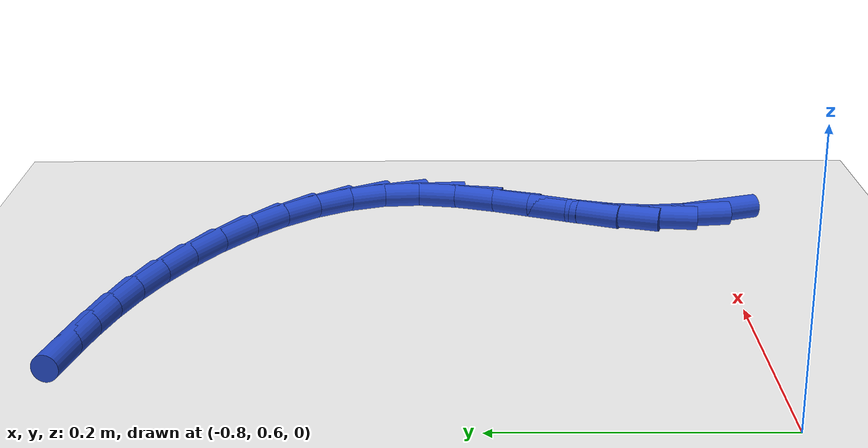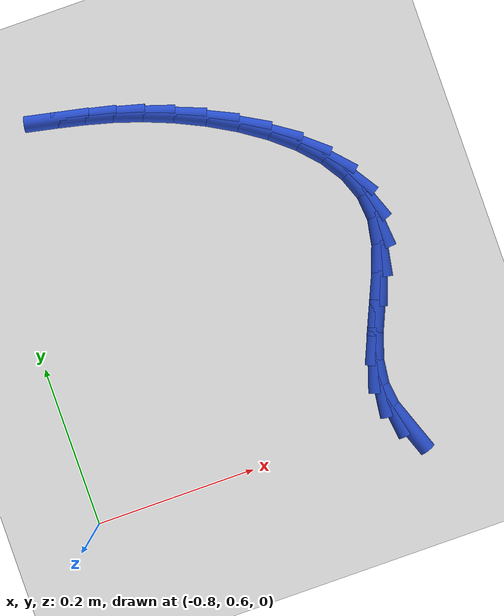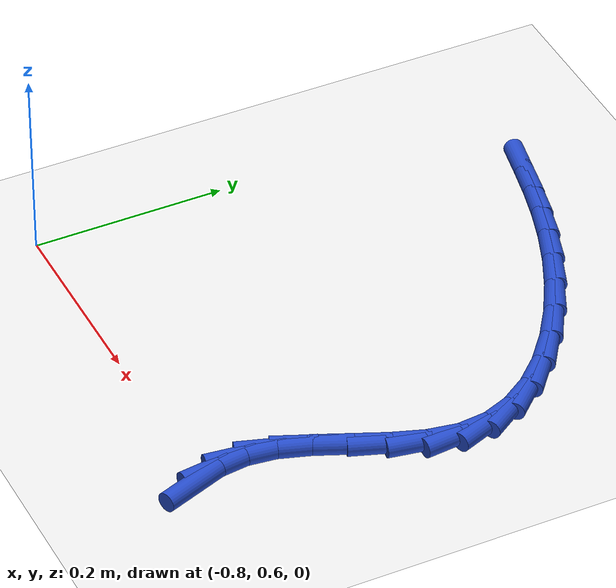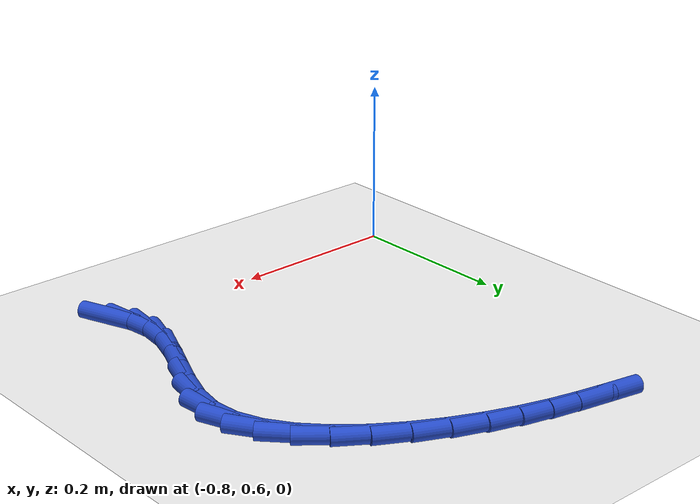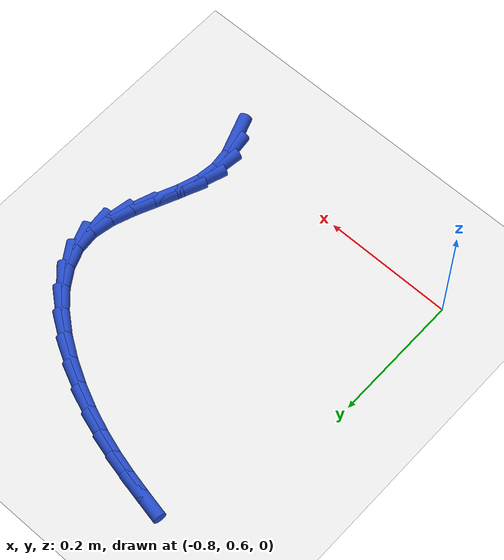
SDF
<sdf version="1.6">
 <world name="default">
  <model name="ground_plane">
   <static>1</static>
   <link name="link">
    <collision name="collision">
     <geometry><plane><normal>0 0 1</normal><size>100 100</size></plane></geometry>
     <surface><friction><ode><mu>100</mu><mu2>50</mu2></ode></friction></surface>
    </collision>
    <visual name="visual">
     <cast_shadows>0</cast_shadows>
     <geometry><plane><normal>0 0 1</normal><size>100 100</size></plane></geometry>
     <material>
      <script><uri>file://media/materials/scripts/gazebo.material</uri><name>Gazebo/WhiteGlow</name></script>
     </material>
    </visual>
   </link>
  </model>
  <model name="line">
   <link name="link_21">
    <pose>-0.40477902608490995 0.5917433827891726 0.01 0 1.57 -1.2191458471171945</pose>
    <collision name="collision">
     <geometry><cylinder><radius>0.01</radius><length>0.08</length></cylinder></geometry>
    </collision>
    <visual name="visual">
     <material>
      <script><name>Gazebo/Blue</name><uri>file://media/materials/scripts/gazebo.material</uri></script>
     </material>
     <geometry><cylinder><radius>0.01</radius><length>0.08</length></cylinder></geometry>
    </visual>
   </link>
   <link name="link_22">
    <pose>-0.4147504416400459 0.6189208560067856 0.01 0 1.57 -1.4473000427369278</pose>
    <collision name="collision">
     <geometry><cylinder><radius>0.01</radius><length>0.08</length></cylinder></geometry>
    </collision>
    <visual name="visual">
     <material>
      <script><name>Gazebo/Blue</name><uri>file://media/materials/scripts/gazebo.material</uri></script>
     </material>
     <geometry><cylinder><radius>0.01</radius><length>0.08</length></cylinder></geometry>
    </visual>
   </link>
   <link name="link_23">
    <pose>-0.4183021813384908 0.6475343894901304 0.01 0 1.57 1.4511622171094867</pose>
    <collision name="collision">
     <geometry><cylinder><radius>0.01</radius><length>0.08</length></cylinder></geometry>
    </collision>
    <visual name="visual">
     <material>
      <script><name>Gazebo/Blue</name><uri>file://media/materials/scripts/gazebo.material</uri></script>
     </material>
     <geometry><cylinder><radius>0.01</radius><length>0.08</length></cylinder></geometry>
    </visual>
   </link>
   <link name="link_24">
    <pose>-0.41466422733661273 0.677798179427977 0.01 0 1.57 1.256721463330166</pose>
    <collision name="collision">
     <geometry><cylinder><radius>0.01</radius><length>0.08</length></cylinder></geometry>
    </collision>
    <visual name="visual">
     <material>
      <script><name>Gazebo/Blue</name><uri>file://media/materials/scripts/gazebo.material</uri></script>
     </material>
     <geometry><cylinder><radius>0.01</radius><length>0.08</length></cylinder></geometry>
    </visual>
   </link>
   <link name="link_25">
    <pose>-0.404308313295251 0.7096795612259761 0.01 0 1.57 1.1665611658719603</pose>
    <collision name="collision">
     <geometry><cylinder><radius>0.01</radius><length>0.08</length></cylinder></geometry>
    </collision>
    <visual name="visual">
     <material>
      <script><name>Gazebo/Blue</name><uri>file://media/materials/scripts/gazebo.material</uri></script>
     </material>
     <geometry><cylinder><radius>0.01</radius><length>0.08</length></cylinder></geometry>
    </visual>
   </link>
   <link name="link_26">
    <pose>-0.3902040466158815 0.7426492918153176 0.01 0 1.57 1.1598717814632624</pose>
    <collision name="collision">
     <geometry><cylinder><radius>0.01</radius><length>0.08</length></cylinder></geometry>
    </collision>
    <visual name="visual">
     <material>
      <script><name>Gazebo/Blue</name><uri>file://media/materials/scripts/gazebo.material</uri></script>
     </material>
     <geometry><cylinder><radius>0.01</radius><length>0.08</length></cylinder></geometry>
    </visual>
   </link>
   <link name="link_27">
    <pose>-0.3756204334847614 0.7761186075079607 0.01 0 1.57 1.2311646708894919</pose>
    <collision name="collision">
     <geometry><cylinder><radius>0.01</radius><length>0.08</length></cylinder></geometry>
    </collision>
    <visual name="visual">
     <material>
      <script><name>Gazebo/Blue</name><uri>file://media/materials/scripts/gazebo.material</uri></script>
     </material>
     <geometry><cylinder><radius>0.01</radius><length>0.08</length></cylinder></geometry>
    </visual>
   </link>
   <link name="link_28">
    <pose>-0.36382648008814805 0.8094987446158667 0.01 0 1.57 1.3971826716482925</pose>
    <collision name="collision">
     <geometry><cylinder><radius>0.01</radius><length>0.08</length></cylinder></geometry>
    </collision>
    <visual name="visual">
     <material>
      <script><name>Gazebo/Blue</name><uri>file://media/materials/scripts/gazebo.material</uri></script>
     </material>
     <geometry><cylinder><radius>0.01</radius><length>0.08</length></cylinder></geometry>
    </visual>
   </link>
   <link name="link_29">
    <pose>-0.35809119261229855 0.8422009394509945 0.01 0 1.57 -1.4765542553431965</pose>
    <collision name="collision">
     <geometry><cylinder><radius>0.01</radius><length>0.08</length></cylinder></geometry>
    </collision>
    <visual name="visual">
     <material>
      <script><name>Gazebo/Blue</name><uri>file://media/materials/scripts/gazebo.material</uri></script>
     </material>
     <geometry><cylinder><radius>0.01</radius><length>0.08</length></cylinder></geometry>
    </visual>
   </link>
   <link name="link_30">
    <pose>-0.36106757982778737 0.8736897457355649 0.01 0 1.57 -1.2087274826623706</pose>
    <collision name="collision">
     <geometry><cylinder><radius>0.01</radius><length>0.08</length></cylinder></geometry>
    </collision>
    <visual name="visual">
     <material>
      <script><name>Gazebo/Blue</name><uri>file://media/materials/scripts/gazebo.material</uri></script>
     </material>
     <geometry><cylinder><radius>0.01</radius><length>0.08</length></cylinder></geometry>
    </visual>
   </link>
   <link name="link_31">
    <pose>-0.37242974952171337 0.9036875547765354 0.01 0 1.57 -0.9913672337671484</pose>
    <collision name="collision">
     <geometry><cylinder><radius>0.01</radius><length>0.08</length></cylinder></geometry>
    </collision>
    <visual name="visual">
     <material>
      <script><name>Gazebo/Blue</name><uri>file://media/materials/scripts/gazebo.material</uri></script>
     </material>
     <geometry><cylinder><radius>0.01</radius><length>0.08</length></cylinder></geometry>
    </visual>
   </link>
   <link name="link_32">
    <pose>-0.39095253943699854 0.9319945938403321 0.01 0 1.57 -0.8238748802612862</pose>
    <collision name="collision">
     <geometry><cylinder><radius>0.01</radius><length>0.08</length></cylinder></geometry>
    </collision>
    <visual name="visual">
     <material>
      <script><name>Gazebo/Blue</name><uri>file://media/materials/scripts/gazebo.material</uri></script>
     </material>
     <geometry><cylinder><radius>0.01</radius><length>0.08</length></cylinder></geometry>
    </visual>
   </link>
   <link name="link_33">
    <pose>-0.41541059901301086 0.9584111064919211 0.01 0 1.57 -0.6951343314391202</pose>
    <collision name="collision">
     <geometry><cylinder><radius>0.01</radius><length>0.08</length></cylinder></geometry>
    </collision>
    <visual name="visual">
     <material>
      <script><name>Gazebo/Blue</name><uri>file://media/materials/scripts/gazebo.material</uri></script>
     </material>
     <geometry><cylinder><radius>0.01</radius><length>0.08</length></cylinder></geometry>
    </visual>
   </link>
   <link name="link_34">
    <pose>-0.4445785776891182 0.9827373362962682 0.01 0 1.57 -0.593659636820305</pose>
    <collision name="collision">
     <geometry><cylinder><radius>0.01</radius><length>0.08</length></cylinder></geometry>
    </collision>
    <visual name="visual">
     <material>
      <script><name>Gazebo/Blue</name><uri>file://media/materials/scripts/gazebo.material</uri></script>
     </material>
     <geometry><cylinder><radius>0.01</radius><length>0.08</length></cylinder></geometry>
    </visual>
   </link>
   <link name="link_35">
    <pose>-0.4772311249046881 1.0047735268183393 0.01 0 1.57 -0.510396871629072</pose>
    <collision name="collision">
     <geometry><cylinder><radius>0.01</radius><length>0.08</length></cylinder></geometry>
    </collision>
    <visual name="visual">
     <material>
      <script><name>Gazebo/Blue</name><uri>file://media/materials/scripts/gazebo.material</uri></script>
     </material>
     <geometry><cylinder><radius>0.01</radius><length>0.08</length></cylinder></geometry>
    </visual>
   </link>
   <link name="link_36">
    <pose>-0.5121428900990886 1.0243199216231007 0.01 0 1.57 -0.4385036709214673</pose>
    <collision name="collision">
     <geometry><cylinder><radius>0.01</radius><length>0.08</length></cylinder></geometry>
    </collision>
    <visual name="visual">
     <material>
      <script><name>Gazebo/Blue</name><uri>file://media/materials/scripts/gazebo.material</uri></script>
     </material>
     <geometry><cylinder><radius>0.01</radius><length>0.08</length></cylinder></geometry>
    </visual>
   </link>
   <link name="link_37">
    <pose>-0.5480885227116872 1.0411767642755172 0.01 0 1.57 -0.37242439723758225</pose>
    <collision name="collision">
     <geometry><cylinder><radius>0.01</radius><length>0.08</length></cylinder></geometry>
    </collision>
    <visual name="visual">
     <material>
      <script><name>Gazebo/Blue</name><uri>file://media/materials/scripts/gazebo.material</uri></script>
     </material>
     <geometry><cylinder><radius>0.01</radius><length>0.08</length></cylinder></geometry>
    </visual>
   </link>
   <link name="link_38">
    <pose>-0.5838426721818522 1.0551442983405557 0.01 0 1.57 -0.30881945779054787</pose>
    <collision name="collision">
     <geometry><cylinder><radius>0.01</radius><length>0.08</length></cylinder></geometry>
    </collision>
    <visual name="visual">
     <material>
      <script><name>Gazebo/Blue</name><uri>file://media/materials/scripts/gazebo.material</uri></script>
     </material>
     <geometry><cylinder><radius>0.01</radius><length>0.08</length></cylinder></geometry>
    </visual>
   </link>
   <link name="link_39">
    <pose>-0.6184028130059088 1.0661698928595957 0.01 0 1.57 -0.25520044645844464</pose>
    <collision name="collision">
     <geometry><cylinder><radius>0.01</radius><length>0.08</length></cylinder></geometry>
    </collision>
    <visual name="visual">
     <material>
      <script><name>Gazebo/Blue</name><uri>file://media/materials/scripts/gazebo.material</uri></script>
     </material>
     <geometry><cylinder><radius>0.01</radius><length>0.08</length></cylinder></geometry>
    </visual>
   </link>
   <link name="link_40">
    <pose>-0.6517987080443894 1.0748825095075163 0.01 0 1.57 -0.21838367436833178</pose>
    <collision name="collision">
     <geometry><cylinder><radius>0.01</radius><length>0.08</length></cylinder></geometry>
    </collision>
    <visual name="visual">
     <material>
      <script><name>Gazebo/Blue</name><uri>file://media/materials/scripts/gazebo.material</uri></script>
     </material>
     <geometry><cylinder><radius>0.01</radius><length>0.08</length></cylinder></geometry>
    </visual>
   </link>
   <link name="link_41">
    <pose>-0.6843588424780241 1.0821083483859455 0.01 0 1.57 -0.20203209034415978</pose>
    <collision name="collision">
     <geometry><cylinder><radius>0.01</radius><length>0.08</length></cylinder></geometry>
    </collision>
    <visual name="visual">
     <material>
      <script><name>Gazebo/Blue</name><uri>file://media/materials/scripts/gazebo.material</uri></script>
     </material>
     <geometry><cylinder><radius>0.01</radius><length>0.08</length></cylinder></geometry>
    </visual>
   </link>
  </model>
 </world>
</sdf>
